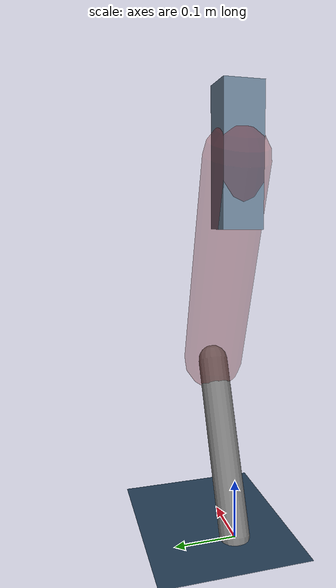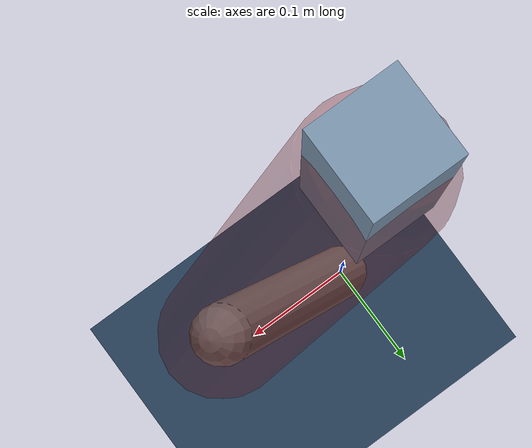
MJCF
<mujoco model="Hopper2D">
	<compiler inertiafromgeom="true" angle="radian" />
	<option timestep="0.001" integrator="implicit" cone="elliptic" solver="Newton" tolerance="1e-10" />

	<default>
		<geom contype="1" conaffinity="1" condim="3" friction="2 0.005 0.0001" solref="0.005 1" />
		<joint limited="true" damping="0.1" />
	</default>

	<asset>
		<texture name="skybox" type="skybox" builtin="gradient" rgb1=".4 .6 .8" rgb2="0 0 0" width="800" height="800" />
		<texture name="grid" type="2d" builtin="checker" rgb1=".1 .2 .3" rgb2=".2 .3 .4" width="300" height="300" mark="edge" markrgb=".2 .3 .4" />
		<material name="ground" texture="grid" texrepeat="1 1" texuniform="true" reflectance="0.1" />
		<material name="leg" rgba="0.5 0.6 0.7 1" />
	</asset>

	<worldbody>

		<geom name="floor" type="plane" size="5 5 0.25" material="ground" />

		<light directional="false" diffuse="0.8 0.8 0.8" specular="0.3 0.3 0.3" pos="0 0 2" dir="0 0 -1" />
		<light mode="targetbodycom" target="base" directional="false" diffuse="0.8 0.8 0.8" specular="0.3 0.3 0.3" pos="0 0 2" dir="0 0 -1" />

		<camera name="fixed" pos="0 -2 1" xyaxes="1 0 0 0 0 1" />
		<camera name="tracking" mode="trackcom" pos="0 -3 1" />

		<body name="root" pos="0 0 0.598658636020849">
			<joint name="slide_x" type="slide" axis="1 0 0" range="-100 100" />
			<joint name="slide_z" type="slide" axis="0 0 1" range="0 10" />

			<body name="base" pos="0 0 0">
				<geom name="torso" type="box" size="0.03 0.03 0.1" mass="1.7610000000000001" material="leg" />

				<body name="link1" pos="0 0 0" euler="0 1.2075089053166157 0">
					<joint type="hinge" axis="0 -1 0" pos="0 0 0" name="hinge1" limited="true" range="-3.14 3.14" stiffness="0" damping="0.1" />
					<geom name="thigh" type="capsule" fromto="0 0 0 0.3489925302786565 0 0" size="0.05" rgba="0.5 0 0 0.3" mass="1.1238790847802382" />

					<body name="link2" pos="0.3489925302786565 0 0" euler="0 0.7904506873674729 0">
						<joint type="hinge" axis="0 -1 0" pos="0 0 0" name="hinge2" limited="true" range="-3.14 3.14" stiffness="0" damping="0.1" />
						<geom name="shank" type="capsule" fromto="0 0 0 0.2993409465461941 0 0" size="0.025" mass="0.4828727572369553" />

					</body>
				</body>
			</body>
		</body>
	</worldbody>

	<actuator>
		<motor name="torque1" joint="hinge1" ctrlrange="-17.43678068091151 17.43678068091151" ctrllimited="true" gear="1" />
		<motor name="torque2" joint="hinge2" ctrlrange="-67.89497909883266 67.89497909883266" ctrllimited="true" gear="1" />
	</actuator>
</mujoco>
